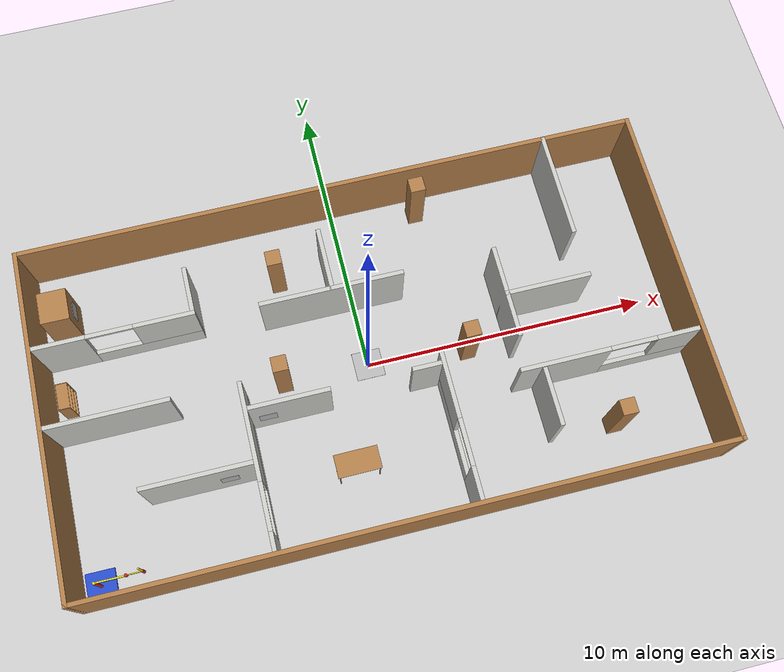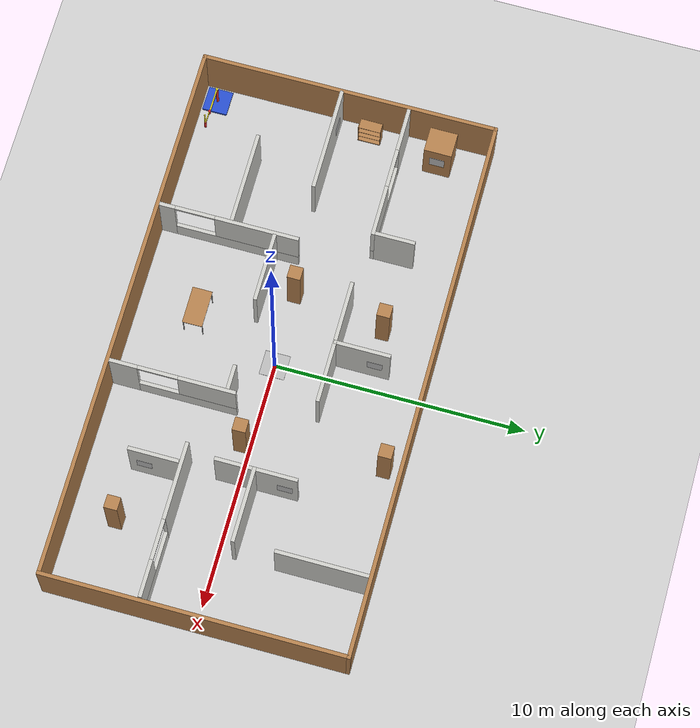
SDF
<sdf version="1.6">
 <world name="default">
  <light name="sun" type="directional">
   <pose>0 0 10 0 -0 0</pose>
   <diffuse>0.8 0.8 0.8 1</diffuse>
   <specular>0.2 0.2 0.2 1</specular>
   <attenuation>
    <range>1000</range>
    <constant>0.9</constant>
    <linear>0.01</linear>
    <quadratic>0.001</quadratic>
   </attenuation>
   <direction>-0.5 0.1 -0.9</direction>
  </light>
  <model name="ground_plane">
   <static>1</static>
   <link name="link">
    <collision name="collision">
     <geometry><plane><normal>0 0 1</normal><size>25 25</size></plane></geometry>
     <surface><friction><ode><mu>100</mu><mu2>50</mu2></ode></friction></surface>
    </collision>
    <visual name="visual">
     <cast_shadows>0</cast_shadows>
     <geometry><plane><normal>0 0 1</normal><size>25 25</size></plane></geometry>
     <material>
      <script><uri>file://media/materials/scripts/gazebo.material</uri><name>Gazebo/Grey</name></script>
     </material>
    </visual>
   </link>
  </model>
  <gravity>0 0 -9.8</gravity>
  <magnetic_field>6e-06 2.3e-05 -4.2e-05</magnetic_field>
  <atmosphere type="adiabatic"/>
  <plugin name="ros_interface_plugin" filename="librotors_gazebo_ros_interface_plugin.so"/>
  <physics name="default_physics" default="0" type="ode">
   <max_step_size>0.001</max_step_size>
   <real_time_factor>1</real_time_factor>
   <real_time_update_rate>1000</real_time_update_rate>
  </physics>
  <scene>
   <sky><clouds><speed>30</speed></clouds><sunrise>5</sunrise><time>10</time><sunset>15</sunset></sky>
   <ambient>0.5 0.5 0.5 1</ambient>
   <background>0.7 0.7 0.7 1</background>
   <shadows>1</shadows>
  </scene>
  <spherical_coordinates>
   <surface_model>EARTH_WGS84</surface_model>
   <latitude_deg>0</latitude_deg>
   <longitude_deg>0</longitude_deg>
   <elevation>0</elevation>
   <heading_deg>0</heading_deg>
  </spherical_coordinates>
  <model name="20230316">
   <link name="Wall_14">
    <collision name="Wall_14_Collision">
     <geometry><box><size>12 0.15 2.5</size></box></geometry>
     <pose>0 0 1.25 0 -0 0</pose>
    </collision>
    <visual name="Wall_14_Visual">
     <pose>0 0 1.25 0 -0 0</pose>
     <geometry><box><size>12 0.15 2.5</size></box></geometry>
     <material>
      <script><uri>file://media/materials/scripts/gazebo.material</uri><name>Gazebo/Wood</name></script>
      <ambient>1 1 1 1</ambient>
     </material>
     <meta><layer>0</layer></meta>
    </visual>
    <pose>-10.925 0 0 0 -0 -1.5708</pose>
   </link>
   <link name="startflag">
    <pose>0 0 0.115 0 -0 0</pose>
    <inertial>
     <mass>0.39</mass>
     <inertia><ixx>0.00058</ixx><ixy>0</ixy><ixz>0</ixz><iyy>0.00058</iyy><iyz>0</iyz><izz>0.00019</izz></inertia>
    </inertial>
    <collision name="collision"><geometry><box><size>1 1 0.01</size></box></geometry></collision>
    <visual name="visual">
     <geometry><box><size>1 1 0.01</size></box></geometry>
     <material>
      <script>
       <uri>model://apriltag/materials/scripts</uri>
       <uri>model://apriltag/materials/textures</uri>
       <name>startflag/Diffuse</name>
      </script>
     </material>
    </visual>
   </link>
   <link name="Wall_15">
    <collision name="Wall_15_Collision">
     <geometry><box><size>22 0.15 2.5</size></box></geometry>
     <pose>0 0 1.25 0 -0 0</pose>
    </collision>
    <visual name="Wall_15_Visual">
     <pose>0 0 1.25 0 -0 0</pose>
     <geometry><box><size>22 0.15 2.5</size></box></geometry>
     <material>
      <script><uri>file://media/materials/scripts/gazebo.material</uri><name>Gazebo/Wood</name></script>
      <ambient>1 1 1 1</ambient>
     </material>
     <meta><layer>0</layer></meta>
    </visual>
    <pose>0 -5.925 0 0 -0 0</pose>
   </link>
   <link name="Wall_16">
    <collision name="Wall_16_Collision">
     <geometry><box><size>12 0.15 2.5</size></box></geometry>
     <pose>0 0 1.25 0 -0 0</pose>
    </collision>
    <visual name="Wall_16_Visual">
     <pose>0 0 1.25 0 -0 0</pose>
     <geometry><box><size>12 0.15 2.5</size></box></geometry>
     <material>
      <script><uri>file://media/materials/scripts/gazebo.material</uri><name>Gazebo/Wood</name></script>
      <ambient>1 1 1 1</ambient>
     </material>
     <meta><layer>0</layer></meta>
    </visual>
    <pose>10.925 0 0 0 -0 1.5708</pose>
   </link>
   <link name="Wall_17">
    <collision name="Wall_17_Collision">
     <geometry><box><size>22 0.15 2.5</size></box></geometry>
     <pose>0 0 1.25 0 -0 0</pose>
    </collision>
    <visual name="Wall_17_Visual">
     <pose>0 0 1.25 0 -0 0</pose>
     <geometry><box><size>22 0.15 2.5</size></box></geometry>
     <material>
      <script><uri>file://media/materials/scripts/gazebo.material</uri><name>Gazebo/Wood</name></script>
      <ambient>1 1 1 1</ambient>
     </material>
     <meta><layer>0</layer></meta>
    </visual>
    <pose>0 5.925 0 0 -0 3.14159</pose>
   </link>
   <link name="Wall_22">
    <collision name="Wall_22_Collision">
     <geometry><box><size>3.75 0.15 2.5</size></box></geometry>
     <pose>0 0 1.25 0 -0 0</pose>
    </collision>
    <visual name="Wall_22_Visual">
     <pose>0 0 1.25 0 -0 0</pose>
     <geometry><box><size>3.75 0.15 2.5</size></box></geometry>
     <material>
      <script><uri>file://media/materials/scripts/gazebo.material</uri><name>Gazebo/CeilingTiled</name></script>
      <ambient>0.921569 0.807843 0.615686 1</ambient>
     </material>
     <meta><layer>0</layer></meta>
    </visual>
    <pose>7.80154 4.0984 0 0 -0 -1.5708</pose>
   </link>
   <link name="Wall_25">
    <collision name="Wall_25_Collision">
     <geometry><box><size>3.25 0.15 2.5</size></box></geometry>
     <pose>0 0 1.25 0 -0 0</pose>
    </collision>
    <visual name="Wall_25_Visual">
     <pose>0 0 1.25 0 -0 0</pose>
     <geometry><box><size>3.25 0.15 2.5</size></box></geometry>
     <material>
      <script><uri>file://media/materials/scripts/gazebo.material</uri><name>Gazebo/CeilingTiled</name></script>
      <ambient>0.921569 0.807843 0.615686 1</ambient>
     </material>
     <meta><layer>0</layer></meta>
    </visual>
    <pose>4.95532 0.704173 0 0 -0 -1.5708</pose>
   </link>
   <link name="Wall_28">
    <collision name="Wall_28_Collision">
     <geometry><box><size>3 0.15 2.5</size></box></geometry>
     <pose>0 0 1.25 0 -0 0</pose>
    </collision>
    <visual name="Wall_28_Visual">
     <pose>0 0 1.25 0 -0 0</pose>
     <geometry><box><size>3 0.15 2.5</size></box></geometry>
     <material>
      <script><uri>file://media/materials/scripts/gazebo.material</uri><name>Gazebo/CeilingTiled</name></script>
      <ambient>0.921569 0.807843 0.615686 1</ambient>
     </material>
     <meta><layer>0</layer></meta>
    </visual>
    <pose>6.38032 0.631561 0 0 -0 0</pose>
   </link>
   <link name="Wall_30">
    <collision name="Wall_30_Collision">
     <geometry><box><size>2.25 0.15 2.5</size></box></geometry>
     <pose>0 0 1.25 0 -0 0</pose>
    </collision>
    <visual name="Wall_30_Visual">
     <pose>0 0 1.25 0 -0 0</pose>
     <geometry><box><size>2.25 0.15 2.5</size></box></geometry>
     <material>
      <script><uri>file://media/materials/scripts/gazebo.material</uri><name>Gazebo/CeilingTiled</name></script>
      <ambient>0.921569 0.807843 0.615686 1</ambient>
     </material>
     <meta><layer>0</layer></meta>
    </visual>
    <pose>-0.710524 3.27899 0 0 -0 -1.5708</pose>
   </link>
   <link name="Wall_32">
    <collision name="Wall_32_Collision">
     <geometry><box><size>5 0.15 2.5</size></box></geometry>
     <pose>0 0 1.25 0 -0 0</pose>
    </collision>
    <visual name="Wall_32_Visual">
     <pose>0 0 1.25 0 -0 0</pose>
     <geometry><box><size>5 0.15 2.5</size></box></geometry>
     <material>
      <script><uri>file://media/materials/scripts/gazebo.material</uri><name>Gazebo/CeilingTiled</name></script>
      <ambient>0.921569 0.807843 0.615686 1</ambient>
     </material>
     <meta><layer>0</layer></meta>
    </visual>
    <pose>-0.732742 2.20097 0 0 -0 0</pose>
   </link>
   <link name="Wall_41">
    <collision name="Wall_41_Collision">
     <geometry><box><size>4.25 0.15 2.5</size></box></geometry>
     <pose>0 0 1.25 0 -0 0</pose>
    </collision>
    <visual name="Wall_41_Visual">
     <pose>0 0 1.25 0 -0 0</pose>
     <geometry><box><size>4.25 0.15 2.5</size></box></geometry>
     <material>
      <script><uri>file://media/materials/scripts/gazebo.material</uri><name>Gazebo/CeilingTiled</name></script>
      <ambient>0.921569 0.807843 0.615686 1</ambient>
     </material>
     <meta><layer>0</layer></meta>
    </visual>
    <pose>-8.7952 -0.299446 0 0 -0 0</pose>
   </link>
   <link name="Wall_43">
    <collision name="Wall_43_Collision">
     <geometry><box><size>3.75 0.15 2.5</size></box></geometry>
     <pose>0 0 1.25 0 -0 0</pose>
    </collision>
    <visual name="Wall_43_Visual">
     <pose>0 0 1.25 0 -0 0</pose>
     <geometry><box><size>3.75 0.15 2.5</size></box></geometry>
     <material>
      <script><uri>file://media/materials/scripts/gazebo.material</uri><name>Gazebo/CeilingTiled</name></script>
      <ambient>0.921569 0.807843 0.615686 1</ambient>
     </material>
     <meta><layer>0</layer></meta>
    </visual>
    <pose>-6.33198 -2.95947 0 0 -0 0</pose>
   </link>
   <static>1</static>
  </model>
  <model name="window1">
   <pose>7.71672 -2.0654 0 0 -0 0</pose>
   <link name="Wall_0">
    <visual name="Wall_0_Visual_0">
     <pose>-1.54209 0 1.25 0 -0 0</pose>
     <geometry><box><size>3.11583 0.15 2.5</size></box></geometry>
     <material>
      <script><uri>file://media/materials/scripts/gazebo.material</uri><name>Gazebo/CeilingTiled</name></script>
      <ambient>1 0.764706 0.305882 1</ambient>
     </material>
     <meta><layer>0</layer></meta>
    </visual>
    <collision name="Wall_0_Collision_0">
     <geometry><box><size>3.11583 0.15 2.5</size></box></geometry>
     <pose>-1.54209 0 1.25 0 -0 0</pose>
    </collision>
    <visual name="Wall_0_Visual_1">
     <pose>1.55791 0 0.4 0 -0 0</pose>
     <geometry><box><size>3.08418 0.15 0.8</size></box></geometry>
     <material>
      <script><uri>file://media/materials/scripts/gazebo.material</uri><name>Gazebo/CeilingTiled</name></script>
      <ambient>1 0.764706 0.305882 1</ambient>
     </material>
     <meta><layer>0</layer></meta>
    </visual>
    <collision name="Wall_0_Collision_1">
     <geometry><box><size>3.08418 0.15 0.8</size></box></geometry>
     <pose>1.55791 0 0.4 0 -0 0</pose>
    </collision>
    <visual name="Wall_0_Visual_2">
     <pose>2.35791 0 1.65 0 -0 0</pose>
     <geometry><box><size>1.48418 0.15 1.7</size></box></geometry>
     <material>
      <script><uri>file://media/materials/scripts/gazebo.material</uri><name>Gazebo/CeilingTiled</name></script>
      <ambient>1 0.764706 0.305882 1</ambient>
     </material>
     <meta><layer>0</layer></meta>
    </visual>
    <collision name="Wall_0_Collision_2">
     <geometry><box><size>1.48418 0.15 1.7</size></box></geometry>
     <pose>2.35791 0 1.65 0 -0 0</pose>
    </collision>
    <visual name="Wall_0_Visual_3">
     <pose>0.815825 0 2.45 0 -0 0</pose>
     <geometry><box><size>1.6 0.15 0.1</size></box></geometry>
     <material>
      <script><uri>file://media/materials/scripts/gazebo.material</uri><name>Gazebo/CeilingTiled</name></script>
      <ambient>1 0.764706 0.305882 1</ambient>
     </material>
     <meta><layer>0</layer></meta>
    </visual>
    <collision name="Wall_0_Collision_3">
     <geometry><box><size>1.6 0.15 0.1</size></box></geometry>
     <pose>0.815825 0 2.45 0 -0 0</pose>
    </collision>
   </link>
   <static>1</static>
  </model>
  <model name="window2">
   <pose>2.26488 -3.35 0 0 -0 0</pose>
   <link name="Wall_2">
    <pose>0 -0 0 0 -0 1.5708</pose>
    <visual name="Wall_2_Visual_0">
     <pose>-1.94455 0 1.25 0 -0 0</pose>
     <geometry><box><size>1.1109 0.15 2.5</size></box></geometry>
     <material>
      <script><uri>file://media/materials/scripts/gazebo.material</uri><name>Gazebo/CeilingTiled</name></script>
      <ambient>1 0.764706 0.305882 1</ambient>
     </material>
     <meta><layer>0</layer></meta>
    </visual>
    <collision name="Wall_2_Collision_0">
     <geometry><box><size>1.1109 0.15 2.5</size></box></geometry>
     <pose>-1.94455 0 1.25 0 -0 0</pose>
    </collision>
    <visual name="Wall_2_Visual_1">
     <pose>0.555448 0 0.4 0 -0 0</pose>
     <geometry><box><size>3.8891 0.15 0.8</size></box></geometry>
     <material>
      <script><uri>file://media/materials/scripts/gazebo.material</uri><name>Gazebo/CeilingTiled</name></script>
      <ambient>1 0.764706 0.305882 1</ambient>
     </material>
     <meta><layer>0</layer></meta>
    </visual>
    <collision name="Wall_2_Collision_1">
     <geometry><box><size>3.8891 0.15 0.8</size></box></geometry>
     <pose>0.555448 0 0.4 0 -0 0</pose>
    </collision>
    <visual name="Wall_2_Visual_2">
     <pose>1.35545 0 1.65 0 -0 0</pose>
     <geometry><box><size>2.2891 0.15 1.7</size></box></geometry>
     <material>
      <script><uri>file://media/materials/scripts/gazebo.material</uri><name>Gazebo/CeilingTiled</name></script>
      <ambient>1 0.764706 0.305882 1</ambient>
     </material>
     <meta><layer>0</layer></meta>
    </visual>
    <collision name="Wall_2_Collision_2">
     <geometry><box><size>2.2891 0.15 1.7</size></box></geometry>
     <pose>1.35545 0 1.65 0 -0 0</pose>
    </collision>
    <visual name="Wall_2_Visual_3">
     <pose>-0.589104 0 2.45 0 -0 0</pose>
     <geometry><box><size>1.6 0.15 0.1</size></box></geometry>
     <material>
      <script><uri>file://media/materials/scripts/gazebo.material</uri><name>Gazebo/CeilingTiled</name></script>
      <ambient>1 0.764706 0.305882 1</ambient>
     </material>
     <meta><layer>0</layer></meta>
    </visual>
    <collision name="Wall_2_Collision_3">
     <geometry><box><size>1.6 0.15 0.1</size></box></geometry>
     <pose>-0.589104 0 2.45 0 -0 0</pose>
    </collision>
   </link>
   <static>1</static>
  </model>
  <model name="window3">
   <pose>-4.4 -3.05 0 0 -0 0</pose>
   <link name="Wall_0">
    <pose>0 0 0 0 -0 1.5708</pose>
    <visual name="Wall_0_Visual_0">
     <pose>-2.48617 0 1.25 0 -0 0</pose>
     <geometry><box><size>0.62765 0.15 2.5</size></box></geometry>
     <material>
      <script><uri>file://media/materials/scripts/gazebo.material</uri><name>Gazebo/CeilingTiled</name></script>
      <ambient>1 0.764706 0.305882 1</ambient>
     </material>
     <meta><layer>0</layer></meta>
    </visual>
    <collision name="Wall_0_Collision_0">
     <geometry><box><size>0.62765 0.15 2.5</size></box></geometry>
     <pose>-2.48617 0 1.25 0 -0 0</pose>
    </collision>
    <visual name="Wall_0_Visual_1">
     <pose>0.313825 0 0.4 0 -0 0</pose>
     <geometry><box><size>4.97235 0.15 0.8</size></box></geometry>
     <material>
      <script><uri>file://media/materials/scripts/gazebo.material</uri><name>Gazebo/CeilingTiled</name></script>
      <ambient>1 0.764706 0.305882 1</ambient>
     </material>
     <meta><layer>0</layer></meta>
    </visual>
    <collision name="Wall_0_Collision_1">
     <geometry><box><size>4.97235 0.15 0.8</size></box></geometry>
     <pose>0.313825 0 0.4 0 -0 0</pose>
    </collision>
    <visual name="Wall_0_Visual_2">
     <pose>1.11383 0 1.65 0 -0 0</pose>
     <geometry><box><size>3.37235 0.15 1.7</size></box></geometry>
     <material>
      <script><uri>file://media/materials/scripts/gazebo.material</uri><name>Gazebo/CeilingTiled</name></script>
      <ambient>1 0.764706 0.305882 1</ambient>
     </material>
     <meta><layer>0</layer></meta>
    </visual>
    <collision name="Wall_0_Collision_2">
     <geometry><box><size>3.37235 0.15 1.7</size></box></geometry>
     <pose>1.11383 0 1.65 0 -0 0</pose>
    </collision>
    <visual name="Wall_0_Visual_3">
     <pose>-1.37235 0 2.45 0 -0 0</pose>
     <geometry><box><size>1.6 0.15 0.1</size></box></geometry>
     <material>
      <script><uri>file://media/materials/scripts/gazebo.material</uri><name>Gazebo/CeilingTiled</name></script>
      <ambient>1 0.764706 0.305882 1</ambient>
     </material>
     <meta><layer>0</layer></meta>
    </visual>
    <collision name="Wall_0_Collision_3">
     <geometry><box><size>1.6 0.15 0.1</size></box></geometry>
     <pose>-1.37235 0 2.45 0 -0 0</pose>
    </collision>
   </link>
   <static>1</static>
  </model>
  <model name="window4">
   <pose>-8.1 2.44144 0 0 -0 0</pose>
   <link name="Wall_5">
    <visual name="Wall_5_Visual_0">
     <pose>-1.8495 0 1.25 0 -0 0</pose>
     <geometry><box><size>1.801 0.15 2.5</size></box></geometry>
     <material>
      <script><uri>file://media/materials/scripts/gazebo.material</uri><name>Gazebo/CeilingTiled</name></script>
      <ambient>1 0.764706 0.305882 1</ambient>
     </material>
     <meta><layer>0</layer></meta>
    </visual>
    <collision name="Wall_5_Collision_0">
     <geometry><box><size>1.801 0.15 2.5</size></box></geometry>
     <pose>-1.8495 0 1.25 0 -0 0</pose>
    </collision>
    <visual name="Wall_5_Visual_1">
     <pose>0.9005 0 0.4 0 -0 0</pose>
     <geometry><box><size>3.699 0.15 0.8</size></box></geometry>
     <material>
      <script><uri>file://media/materials/scripts/gazebo.material</uri><name>Gazebo/CeilingTiled</name></script>
      <ambient>1 0.764706 0.305882 1</ambient>
     </material>
     <meta><layer>0</layer></meta>
    </visual>
    <collision name="Wall_5_Collision_1">
     <geometry><box><size>3.699 0.15 0.8</size></box></geometry>
     <pose>0.9005 0 0.4 0 -0 0</pose>
    </collision>
    <visual name="Wall_5_Visual_2">
     <pose>1.7005 0 1.65 0 -0 0</pose>
     <geometry><box><size>2.099 0.15 1.7</size></box></geometry>
     <material>
      <script><uri>file://media/materials/scripts/gazebo.material</uri><name>Gazebo/CeilingTiled</name></script>
      <ambient>1 0.764706 0.305882 1</ambient>
     </material>
     <meta><layer>0</layer></meta>
    </visual>
    <collision name="Wall_5_Collision_2">
     <geometry><box><size>2.099 0.15 1.7</size></box></geometry>
     <pose>1.7005 0 1.65 0 -0 0</pose>
    </collision>
    <visual name="Wall_5_Visual_3">
     <pose>-0.149 0 2.45 0 -0 0</pose>
     <geometry><box><size>1.6 0.15 0.1</size></box></geometry>
     <material>
      <script><uri>file://media/materials/scripts/gazebo.material</uri><name>Gazebo/CeilingTiled</name></script>
      <ambient>1 0.764706 0.305882 1</ambient>
     </material>
     <meta><layer>0</layer></meta>
    </visual>
    <collision name="Wall_5_Collision_3">
     <geometry><box><size>1.6 0.15 0.1</size></box></geometry>
     <pose>-0.149 0 2.45 0 -0 0</pose>
    </collision>
   </link>
   <static>1</static>
  </model>
  <model name="add_wall1">
   <pose>5.42333 -3.1581 0 0 -0 0</pose>
   <link name="Wall_1">
    <collision name="Wall_1_Collision">
     <geometry><box><size>2 0.15 2.5</size></box></geometry>
     <pose>0 0 1.25 0 -0 0</pose>
    </collision>
    <visual name="Wall_1_Visual">
     <pose>0 0 1.25 0 -0 0</pose>
     <geometry><box><size>2 0.15 2.5</size></box></geometry>
     <material>
      <script><uri>file://media/materials/scripts/gazebo.material</uri><name>Gazebo/CeilingTiled</name></script>
      <ambient>1 0.764706 0.305882 1</ambient>
     </material>
     <meta><layer>0</layer></meta>
    </visual>
    <pose>0 0 0 0 -0 -1.5708</pose>
   </link>
   <static>1</static>
  </model>
  <model name="add_wall2">
   <pose>-5.43 3.31172 0 0 -0 0</pose>
   <link name="Wall_5">
    <collision name="Wall_5_Collision">
     <geometry><box><size>1.6 0.15 2.5</size></box></geometry>
     <pose>0 0 1.25 0 -0 0</pose>
    </collision>
    <visual name="Wall_5_Visual">
     <pose>0 0 1.25 0 -0 0</pose>
     <geometry><box><size>1.6 0.15 2.5</size></box></geometry>
     <material>
      <script><uri>file://media/materials/scripts/gazebo.material</uri><name>Gazebo/CeilingTiled</name></script>
      <ambient>1 0.764706 0.305882 1</ambient>
     </material>
     <meta><layer>0</layer></meta>
    </visual>
    <pose>0 0 0 0 -0 1.5708</pose>
   </link>
   <static>1</static>
  </model>
  <model name="add_wall3">
   <pose>-2.95 -1.2 0 0 -0 0</pose>
   <link name="Wall_9">
    <collision name="Wall_9_Collision">
     <geometry><box><size>2.8 0.15 2.5</size></box></geometry>
     <pose>0 0 1.25 0 -0 0</pose>
    </collision>
    <visual name="Wall_9_Visual">
     <pose>0 0 1.25 0 -0 0</pose>
     <geometry><box><size>2.8 0.15 2.5</size></box></geometry>
     <material>
      <script><uri>file://media/materials/scripts/gazebo.material</uri><name>Gazebo/CeilingTiled</name></script>
      <ambient>1 0.764706 0.305882 1</ambient>
     </material>
     <meta><layer>0</layer></meta>
    </visual>
   </link>
   <static>1</static>
  </model>
  <model name="add_wall4">
   <pose>1.69 -1.2 0 0 -0 0</pose>
   <link name="Wall_15">
    <collision name="Wall_15_Collision">
     <geometry><box><size>1 0.15 2.5</size></box></geometry>
     <pose>0 0 1.25 0 -0 0</pose>
    </collision>
    <visual name="Wall_15_Visual">
     <pose>0 0 1.25 0 -0 0</pose>
     <geometry><box><size>1 0.15 2.5</size></box></geometry>
     <material>
      <script><uri>file://media/materials/scripts/gazebo.material</uri><name>Gazebo/CeilingTiled</name></script>
      <ambient>1 0.764706 0.305882 1</ambient>
     </material>
     <meta><layer>0</layer></meta>
    </visual>
    <pose>0 0 0 0 -0 3.14159</pose>
   </link>
   <static>1</static>
  </model>
  <model name="unit_box">
   <pose>-10.03 3.96841 1.01795 -4e-06 -2e-06 -0.005315</pose>
   <link name="link">
    <inertial>
     <mass>1</mass>
     <inertia>
      <ixx>0.166667</ixx>
      <ixy>0</ixy>
      <ixz>0</ixz>
      <iyy>0.166667</iyy>
      <iyz>0</iyz>
      <izz>0.166667</izz>
     </inertia>
    </inertial>
    <collision name="collision"><geometry><box><size>1 1.11313 2.03591</size></box></geometry></collision>
    <visual name="visual">
     <geometry><box><size>1 1.11313 2.03591</size></box></geometry>
     <material>
      <script><uri>file://media/materials/scripts/gazebo.material</uri><name>Gazebo/Wood</name></script>
     </material>
    </visual>
   </link>
   <static>0</static>
  </model>
  <model name="table">
   <static>0</static>
   <link name="link">
    <collision name="surface">
     <pose>0 0 1 0 -0 0</pose>
     <geometry><box><size>1.5 0.8 0.03</size></box></geometry>
     <surface><friction><ode><mu>0.6</mu><mu2>0.6</mu2></ode></friction></surface>
    </collision>
    <visual name="visual1">
     <pose>0 0 1 0 -0 0</pose>
     <geometry><box><size>1.5 0.8 0.03</size></box></geometry>
     <material>
      <script><uri>file://media/materials/scripts/gazebo.material</uri><name>Gazebo/Wood</name></script>
     </material>
    </visual>
    <collision name="front_left_leg">
     <pose>0.68 0.38 0.5 0 -0 0</pose>
     <geometry><cylinder><radius>0.02</radius><length>1</length></cylinder></geometry>
    </collision>
    <visual name="front_left_leg">
     <pose>0.68 0.38 0.5 0 -0 0</pose>
     <geometry><cylinder><radius>0.02</radius><length>1</length></cylinder></geometry>
     <material>
      <script><uri>file://media/materials/scripts/gazebo.material</uri><name>Gazebo/Grey</name></script>
     </material>
    </visual>
    <collision name="front_right_leg">
     <pose>0.68 -0.38 0.5 0 -0 0</pose>
     <geometry><cylinder><radius>0.02</radius><length>1</length></cylinder></geometry>
    </collision>
    <visual name="front_right_leg">
     <pose>0.68 -0.38 0.5 0 -0 0</pose>
     <geometry><cylinder><radius>0.02</radius><length>1</length></cylinder></geometry>
     <material>
      <script><uri>file://media/materials/scripts/gazebo.material</uri><name>Gazebo/Grey</name></script>
     </material>
    </visual>
    <collision name="back_right_leg">
     <pose>-0.68 -0.38 0.5 0 -0 0</pose>
     <geometry><cylinder><radius>0.02</radius><length>1</length></cylinder></geometry>
    </collision>
    <visual name="back_right_leg">
     <pose>-0.68 -0.38 0.5 0 -0 0</pose>
     <geometry><cylinder><radius>0.02</radius><length>1</length></cylinder></geometry>
     <material>
      <script><uri>file://media/materials/scripts/gazebo.material</uri><name>Gazebo/Grey</name></script>
     </material>
    </visual>
    <collision name="back_left_leg">
     <pose>-0.68 0.38 0.5 0 -0 0</pose>
     <geometry><cylinder><radius>0.02</radius><length>1</length></cylinder></geometry>
    </collision>
    <visual name="back_left_leg">
     <pose>-0.68 0.38 0.5 0 -0 0</pose>
     <geometry><cylinder><radius>0.02</radius><length>1</length></cylinder></geometry>
     <material>
      <script><uri>file://media/materials/scripts/gazebo.material</uri><name>Gazebo/Grey</name></script>
     </material>
    </visual>
    <inertial>
     <inertia><ixx>1</ixx><ixy>0</ixy><ixz>0</ixz><iyy>1</iyy><iyz>0</iyz><izz>1</izz></inertia>
     <mass>1</mass>
    </inertial>
   </link>
   <pose>-1.20164 -3.44571 0 0 -0 0.005682</pose>
  </model>
  <model name="unit_box_0">
   <pose>-3 0 1.29125 -2e-06 -0 -0.000704</pose>
   <link name="link">
    <inertial>
     <mass>1</mass>
     <inertia>
      <ixx>0.166667</ixx>
      <ixy>0</ixy>
      <ixz>0</ixz>
      <iyy>0.166667</iyy>
      <iyz>0</iyz>
      <izz>0.166667</izz>
     </inertia>
    </inertial>
    <collision name="collision"><geometry><box><size>0.52404 0.528613 2.5825</size></box></geometry></collision>
    <visual name="visual">
     <geometry><box><size>0.52404 0.528613 2.5825</size></box></geometry>
     <material>
      <script><uri>file://media/materials/scripts/gazebo.material</uri><name>Gazebo/Wood</name></script>
     </material>
    </visual>
   </link>
   <static>0</static>
  </model>
  <model name="unit_box_0_clone">
   <pose>3.46103 -0.330294 1.29125 1e-06 1e-06 0.014324</pose>
   <link name="link">
    <inertial>
     <mass>1</mass>
     <inertia>
      <ixx>0.166667</ixx>
      <ixy>0</ixy>
      <ixz>0</ixz>
      <iyy>0.166667</iyy>
      <iyz>0</iyz>
      <izz>0.166667</izz>
     </inertia>
    </inertial>
    <collision name="collision"><geometry><box><size>0.52404 0.528614 2.5825</size></box></geometry></collision>
    <visual name="visual">
     <geometry><box><size>0.52404 0.528614 2.5825</size></box></geometry>
     <material>
      <script><uri>file://media/materials/scripts/gazebo.material</uri><name>Gazebo/Wood</name></script>
     </material>
    </visual>
   </link>
   <static>0</static>
  </model>
  <model name="unit_box_0_clone_0">
   <pose>3 5.20912 1.29125 0 -0 0.000972</pose>
   <link name="link">
    <inertial>
     <mass>1</mass>
     <inertia>
      <ixx>0.166667</ixx>
      <ixy>0</ixy>
      <ixz>0</ixz>
      <iyy>0.166667</iyy>
      <iyz>0</iyz>
      <izz>0.166667</izz>
     </inertia>
    </inertial>
    <collision name="collision"><geometry><box><size>0.52404 0.528614 2.5825</size></box></geometry></collision>
    <visual name="visual">
     <geometry><box><size>0.52404 0.528614 2.5825</size></box></geometry>
     <material>
      <script><uri>file://media/materials/scripts/gazebo.material</uri><name>Gazebo/Wood</name></script>
     </material>
    </visual>
   </link>
   <static>0</static>
  </model>
  <model name="unit_box_0_clone_2">
   <pose>-2.41588 3.7082 1.29125 -1e-06 1e-06 0.000266</pose>
   <link name="link">
    <inertial>
     <mass>1</mass>
     <inertia>
      <ixx>0.166667</ixx>
      <ixy>0</ixy>
      <ixz>0</ixz>
      <iyy>0.166667</iyy>
      <iyz>0</iyz>
      <izz>0.166667</izz>
     </inertia>
    </inertial>
    <collision name="collision"><geometry><box><size>0.52404 0.528614 2.5825</size></box></geometry></collision>
    <visual name="visual">
     <geometry><box><size>0.52404 0.528614 2.5825</size></box></geometry>
     <material>
      <script><uri>file://media/materials/scripts/gazebo.material</uri><name>Gazebo/Wood</name></script>
     </material>
    </visual>
   </link>
   <static>0</static>
  </model>
  <model name="unit_box_0_clone_3">
   <pose>7.64647 -4.07673 1.29125 -1e-06 -1e-06 0.000344</pose>
   <link name="link">
    <inertial>
     <mass>1</mass>
     <inertia>
      <ixx>0.166667</ixx>
      <ixy>0</ixy>
      <ixz>0</ixz>
      <iyy>0.166667</iyy>
      <iyz>0</iyz>
      <izz>0.166667</izz>
     </inertia>
    </inertial>
    <collision name="collision"><geometry><box><size>0.52404 0.528614 2.5825</size></box></geometry></collision>
    <visual name="visual">
     <geometry><box><size>0.52404 0.528614 2.5825</size></box></geometry>
     <material>
      <script><uri>file://media/materials/scripts/gazebo.material</uri><name>Gazebo/Wood</name></script>
     </material>
    </visual>
   </link>
   <static>0</static>
  </model>
  <model name="static_apriltag_0">
   <link name="link">
    <pose>0 0 0 0 1.57 0</pose>
    <inertial>
     <mass>0.39</mass>
     <inertia><ixx>0.00058</ixx><ixy>0</ixy><ixz>0</ixz><iyy>0.00058</iyy><iyz>0</iyz><izz>0.00019</izz></inertia>
    </inertial>
    <collision name="collision"><geometry><box><size>0.6 0.6 0.01</size></box></geometry></collision>
    <visual name="visual">
     <geometry><box><size>0.6 0.6 0.01</size></box></geometry>
     <material>
      <script>
       <uri>model://apriltag/materials/scripts</uri>
       <uri>model://apriltag/materials/textures</uri>
       <name>apriltag/Diffuse0</name>
      </script>
     </material>
    </visual>
    <gravity>0</gravity>
   </link>
   <pose>5.05 1.82972 1.2 0 -0 0</pose>
   <static>0</static>
   <pose>1.90787 0.108649 0 0 -0 0</pose>
  </model>
  <model name="static_apriltag_1">
   <link name="link">
    <pose>0 0 0 0 1.57 0</pose>
    <inertial>
     <mass>0.39</mass>
     <inertia><ixx>0.00058</ixx><ixy>0</ixy><ixz>0</ixz><iyy>0.00058</iyy><iyz>0</iyz><izz>0.00019</izz></inertia>
    </inertial>
    <collision name="collision"><geometry><box><size>0.6 0.6 0.01</size></box></geometry></collision>
    <visual name="visual">
     <geometry><box><size>0.6 0.6 0.01</size></box></geometry>
     <material>
      <script>
       <uri>model://apriltag/materials/scripts</uri>
       <uri>model://apriltag/materials/textures</uri>
       <name>apriltag/Diffuse1</name>
      </script>
     </material>
    </visual>
    <gravity>0</gravity>
   </link>
   <pose>-0.62 3.81606 1.2 0 -0 0</pose>
   <static>0</static>
   <pose>1.36256 0.459264 0 0 -0 0</pose>
  </model>
  <model name="static_apriltag_2">
   <link name="link">
    <pose>0 0 0 0 1.57 0</pose>
    <inertial>
     <mass>0.39</mass>
     <inertia><ixx>0.00058</ixx><ixy>0</ixy><ixz>0</ixz><iyy>0.00058</iyy><iyz>0</iyz><izz>0.00019</izz></inertia>
    </inertial>
    <collision name="collision"><geometry><box><size>0.6 0.6 0.01</size></box></geometry></collision>
    <visual name="visual">
     <geometry><box><size>0.6 0.6 0.01</size></box></geometry>
     <material>
      <script>
       <uri>model://apriltag/materials/scripts</uri>
       <uri>model://apriltag/materials/textures</uri>
       <name>apriltag/Diffuse2</name>
      </script>
     </material>
    </visual>
    <gravity>0</gravity>
   </link>
   <pose>-4.5 -1.3042 1.2 0 -0 0</pose>
   <static>0</static>
   <pose>0.80811 0.829943 0 0 -0 0</pose>
  </model>
  <model name="static_apriltag_3">
   <link name="link">
    <pose>0 0 0 -1.57 1.57 -0</pose>
    <inertial>
     <mass>0.39</mass>
     <inertia><ixx>0.00058</ixx><ixy>0</ixy><ixz>0</ixz><iyy>0.00058</iyy><iyz>0</iyz><izz>0.00019</izz></inertia>
    </inertial>
    <collision name="collision"><geometry><box><size>0.6 0.6 0.01</size></box></geometry></collision>
    <visual name="visual">
     <geometry><box><size>0.6 0.6 0.01</size></box></geometry>
     <material>
      <script>
       <uri>model://apriltag/materials/scripts</uri>
       <uri>model://apriltag/materials/textures</uri>
       <name>apriltag/Diffuse3</name>
      </script>
     </material>
    </visual>
    <gravity>0</gravity>
   </link>
   <pose>-3.7453 -1.3 1.2 0 -0 0</pose>
   <static>0</static>
   <pose>3.65849 3.02317 0 0 -0 0</pose>
  </model>
  <model name="static_apriltag_4">
   <link name="link">
    <pose>0 0 0 0 1.57 0</pose>
    <inertial>
     <mass>0.39</mass>
     <inertia><ixx>0.00058</ixx><ixy>0</ixy><ixz>0</ixz><iyy>0.00058</iyy><iyz>0</iyz><izz>0.00019</izz></inertia>
    </inertial>
    <collision name="collision"><geometry><box><size>0.6 0.6 0.01</size></box></geometry></collision>
    <visual name="visual">
     <geometry><box><size>0.6 0.6 0.01</size></box></geometry>
     <material>
      <script>
       <uri>model://apriltag/materials/scripts</uri>
       <uri>model://apriltag/materials/textures</uri>
       <name>apriltag/Diffuse4</name>
      </script>
     </material>
    </visual>
    <gravity>0</gravity>
   </link>
   <pose>5.52 -3.55231 1.2 0 -0 0</pose>
   <static>0</static>
   <pose>3.93537 3.29316 0 0 -0 0</pose>
  </model>
  <model name="static_apriltag_5">
   <link name="link">
    <pose>0 0 0 -1.57 1.57 -0</pose>
    <inertial>
     <mass>0.39</mass>
     <inertia><ixx>0.00058</ixx><ixy>0</ixy><ixz>0</ixz><iyy>0.00058</iyy><iyz>0</iyz><izz>0.00019</izz></inertia>
    </inertial>
    <collision name="collision"><geometry><box><size>0.6 0.6 0.01</size></box></geometry></collision>
    <visual name="visual">
     <geometry><box><size>0.6 0.6 0.01</size></box></geometry>
     <material>
      <script>
       <uri>model://apriltag/materials/scripts</uri>
       <uri>model://apriltag/materials/textures</uri>
       <name>apriltag/Diffuse5</name>
      </script>
     </material>
    </visual>
    <gravity>0</gravity>
   </link>
   <pose>-5.39507 -3.05 1.2 0 -0 0</pose>
   <static>0</static>
   <pose>5.04082 3.71574 0 0 -0 0</pose>
  </model>
  <model name="static_apriltag_6">
   <link name="link">
    <pose>0 0 0 -1.57 1.57 -0</pose>
    <inertial>
     <mass>0.39</mass>
     <inertia><ixx>0.00058</ixx><ixy>0</ixy><ixz>0</ixz><iyy>0.00058</iyy><iyz>0</iyz><izz>0.00019</izz></inertia>
    </inertial>
    <collision name="collision"><geometry><box><size>0.6 0.6 0.01</size></box></geometry></collision>
    <visual name="visual">
     <geometry><box><size>0.6 0.6 0.01</size></box></geometry>
     <material>
      <script>
       <uri>model://apriltag/materials/scripts</uri>
       <uri>model://apriltag/materials/textures</uri>
       <name>apriltag/Diffuse6</name>
      </script>
     </material>
    </visual>
    <gravity>0</gravity>
   </link>
   <pose>-9.94757 -0.2 1.2 0 -0 0</pose>
   <static>0</static>
   <pose>3.43144 4.34187 0 0 -0 0</pose>
  </model>
  <model name="static_apriltag_7">
   <link name="link">
    <pose>0 0 0 0 1.57 0</pose>
    <inertial>
     <mass>0.39</mass>
     <inertia><ixx>0.00058</ixx><ixy>0</ixy><ixz>0</ixz><iyy>0.00058</iyy><iyz>0</iyz><izz>0.00019</izz></inertia>
    </inertial>
    <collision name="collision"><geometry><box><size>0.6 0.6 0.01</size></box></geometry></collision>
    <visual name="visual">
     <geometry><box><size>0.6 0.6 0.01</size></box></geometry>
     <material>
      <script>
       <uri>model://apriltag/materials/scripts</uri>
       <uri>model://apriltag/materials/textures</uri>
       <name>apriltag/Diffuse7</name>
      </script>
     </material>
    </visual>
    <gravity>0</gravity>
   </link>
   <pose>-9.5 3.96841 1.2 0 -0 0</pose>
   <static>0</static>
   <pose>3.12393 4.47604 0 0 -0 0</pose>
  </model>
  <model name="bookshelf">
   <static>1</static>
   <link name="link">
    <inertial><mass>1</mass></inertial>
    <collision name="back">
     <pose>0 0.005 0.6 0 -0 0</pose>
     <geometry><box><size>0.9 0.01 1.2</size></box></geometry>
    </collision>
    <visual name="visual1">
     <pose>0 0.005 0.6 0 -0 0</pose>
     <geometry><box><size>0.9 0.01 1.2</size></box></geometry>
     <material>
      <script><uri>file://media/materials/scripts/gazebo.material</uri><name>Gazebo/Wood</name></script>
     </material>
    </visual>
    <collision name="left_side">
     <pose>0.45 -0.195 0.6 0 -0 0</pose>
     <geometry><box><size>0.02 0.4 1.2</size></box></geometry>
    </collision>
    <visual name="visual2">
     <pose>0.45 -0.195 0.6 0 -0 0</pose>
     <geometry><box><size>0.02 0.4 1.2</size></box></geometry>
     <material>
      <script><uri>file://media/materials/scripts/gazebo.material</uri><name>Gazebo/Wood</name></script>
     </material>
    </visual>
    <collision name="right_side">
     <pose>-0.45 -0.195 0.6 0 -0 0</pose>
     <geometry><box><size>0.02 0.4 1.2</size></box></geometry>
    </collision>
    <visual name="visual3">
     <pose>-0.45 -0.195 0.6 0 -0 0</pose>
     <geometry><box><size>0.02 0.4 1.2</size></box></geometry>
     <material>
      <script><uri>file://media/materials/scripts/gazebo.material</uri><name>Gazebo/Wood</name></script>
     </material>
    </visual>
    <collision name="bottom">
     <pose>0 -0.195 0.03 0 -0 0</pose>
     <geometry><box><size>0.88 0.4 0.06</size></box></geometry>
    </collision>
    <visual name="visual4">
     <pose>0 -0.195 0.03 0 -0 0</pose>
     <geometry><box><size>0.88 0.4 0.06</size></box></geometry>
     <material>
      <script><uri>file://media/materials/scripts/gazebo.material</uri><name>Gazebo/Wood</name></script>
     </material>
    </visual>
    <collision name="top">
     <pose>0 -0.195 1.19 0 -0 0</pose>
     <geometry><box><size>0.88 0.4 0.02</size></box></geometry>
    </collision>
    <visual name="visual5">
     <pose>0 -0.195 1.19 0 -0 0</pose>
     <geometry><box><size>0.88 0.4 0.02</size></box></geometry>
     <material>
      <script><uri>file://media/materials/scripts/gazebo.material</uri><name>Gazebo/Wood</name></script>
     </material>
    </visual>
    <collision name="low_shelf">
     <pose>0 -0.195 0.43 0 -0 0</pose>
     <geometry><box><size>0.88 0.4 0.02</size></box></geometry>
    </collision>
    <visual name="visual6">
     <pose>0 -0.195 0.43 0 -0 0</pose>
     <geometry><box><size>0.88 0.4 0.02</size></box></geometry>
     <material>
      <script><uri>file://media/materials/scripts/gazebo.material</uri><name>Gazebo/Wood</name></script>
     </material>
    </visual>
    <collision name="high_shelf">
     <pose>0 -0.195 0.8 0 -0 0</pose>
     <geometry><box><size>0.88 0.4 0.02</size></box></geometry>
    </collision>
    <visual name="visual7">
     <pose>0 -0.195 0.8 0 -0 0</pose>
     <geometry><box><size>0.88 0.4 0.02</size></box></geometry>
     <material>
      <script><uri>file://media/materials/scripts/gazebo.material</uri><name>Gazebo/Wood</name></script>
     </material>
    </visual>
   </link>
   <pose>-10.5389 1.04127 0 0 -0 1.57</pose>
  </model>
  <model name="simple_arm">
   <link name="arm_base">
    <inertial>
     <pose>0 0 0.00099 0 -0 0</pose>
     <inertia><ixx>1.11</ixx><ixy>0</ixy><ixz>0</ixz><iyy>100.11</iyy><iyz>0</iyz><izz>1.01</izz></inertia>
     <mass>101</mass>
    </inertial>
    <collision name="arm_base_geom">
     <pose>0 0 0.05 0 -0 0</pose>
     <geometry><box><size>1 1 0.1</size></box></geometry>
    </collision>
    <visual name="arm_base_geom_visual">
     <pose>0 0 0.05 0 -0 0</pose>
     <geometry><box><size>1 1 0.1</size></box></geometry>
     <material>
      <script><uri>file://media/materials/scripts/gazebo.material</uri><name>Gazebo/Blue</name></script>
     </material>
    </visual>
    <collision name="arm_base_geom_arm_trunk">
     <pose>0 0 0.6 0 -0 0</pose>
     <geometry><cylinder><radius>0.05</radius><length>1</length></cylinder></geometry>
    </collision>
    <visual name="arm_base_geom_arm_trunk_visual">
     <pose>0 0 0.6 0 -0 0</pose>
     <geometry><cylinder><radius>0.05</radius><length>1</length></cylinder></geometry>
     <material>
      <script><uri>file://media/materials/scripts/gazebo.material</uri><name>Gazebo/Red</name></script>
     </material>
    </visual>
   </link>
   <link name="arm_shoulder_pan">
    <pose>0 0 1.1 0 -0 0</pose>
    <inertial>
     <pose>0.045455 0 0 0 -0 0</pose>
     <inertia><ixx>0.011</ixx><ixy>0</ixy><ixz>0</ixz><iyy>0.0225</iyy><iyz>0</iyz><izz>0.0135</izz></inertia>
     <mass>1.1</mass>
    </inertial>
    <collision name="arm_shoulder_pan_geom">
     <pose>0 0 0.05 0 -0 0</pose>
     <geometry><cylinder><radius>0.05</radius><length>0.1</length></cylinder></geometry>
    </collision>
    <visual name="arm_shoulder_pan_geom_visual">
     <pose>0 0 0.05 0 -0 0</pose>
     <geometry><cylinder><radius>0.05</radius><length>0.1</length></cylinder></geometry>
     <material>
      <script><uri>file://media/materials/scripts/gazebo.material</uri><name>Gazebo/Yellow</name></script>
     </material>
    </visual>
    <collision name="arm_shoulder_pan_geom_arm_shoulder">
     <pose>0.55 0 0.05 0 -0 0</pose>
     <geometry><box><size>1 0.05 0.1</size></box></geometry>
    </collision>
    <visual name="arm_shoulder_pan_geom_arm_shoulder_visual">
     <pose>0.55 0 0.05 0 -0 0</pose>
     <geometry><box><size>1 0.05 0.1</size></box></geometry>
     <material>
      <script><uri>file://media/materials/scripts/gazebo.material</uri><name>Gazebo/Yellow</name></script>
     </material>
    </visual>
   </link>
   <link name="arm_elbow_pan">
    <pose>1.05 0 1.1 0 -0 0</pose>
    <inertial>
     <pose>0.0875 0 0.083333 0 -0 0</pose>
     <inertia>
      <ixx>0.031</ixx>
      <ixy>0</ixy>
      <ixz>0.005</ixz>
      <iyy>0.07275</iyy>
      <iyz>0</iyz>
      <izz>0.04475</izz>
     </inertia>
     <mass>1.2</mass>
    </inertial>
    <collision name="arm_elbow_pan_geom">
     <pose>0 0 0.1 0 -0 0</pose>
     <geometry><cylinder><radius>0.05</radius><length>0.2</length></cylinder></geometry>
    </collision>
    <visual name="arm_elbow_pan_geom_visual">
     <pose>0 0 0.1 0 -0 0</pose>
     <geometry><cylinder><radius>0.05</radius><length>0.2</length></cylinder></geometry>
     <material>
      <script><uri>file://media/materials/scripts/gazebo.material</uri><name>Gazebo/Red</name></script>
     </material>
    </visual>
    <collision name="arm_elbow_pan_geom_arm_elbow">
     <pose>0.3 0 0.15 0 -0 0</pose>
     <geometry><box><size>0.5 0.03 0.1</size></box></geometry>
    </collision>
    <visual name="arm_elbow_pan_geom_arm_elbow_visual">
     <pose>0.3 0 0.15 0 -0 0</pose>
     <geometry><box><size>0.5 0.03 0.1</size></box></geometry>
     <material>
      <script><uri>file://media/materials/scripts/gazebo.material</uri><name>Gazebo/Yellow</name></script>
     </material>
    </visual>
    <collision name="arm_elbow_pan_geom_arm_wrist">
     <pose>0.55 0 0.15 0 -0 0</pose>
     <geometry><cylinder><radius>0.05</radius><length>0.3</length></cylinder></geometry>
    </collision>
    <visual name="arm_elbow_pan_geom_arm_wrist_visual">
     <pose>0.55 0 0.15 0 -0 0</pose>
     <geometry><cylinder><radius>0.05</radius><length>0.3</length></cylinder></geometry>
     <material>
      <script><uri>file://media/materials/scripts/gazebo.material</uri><name>Gazebo/Red</name></script>
     </material>
    </visual>
   </link>
   <link name="arm_wrist_lift">
    <pose>1.6 0 1.05 0 -0 0</pose>
    <inertial>
     <inertia><ixx>0.01</ixx><ixy>0</ixy><ixz>0</ixz><iyy>0.01</iyy><iyz>0</iyz><izz>0.001</izz></inertia>
     <mass>0.1</mass>
    </inertial>
    <collision name="arm_wrist_lift_geom">
     <pose>0 0 0.5 0 -0 0</pose>
     <geometry><cylinder><radius>0.03</radius><length>1</length></cylinder></geometry>
    </collision>
    <visual name="arm_wrist_lift_geom_visual">
     <pose>0 0 0.5 0 -0 0</pose>
     <geometry><cylinder><radius>0.03</radius><length>1</length></cylinder></geometry>
     <material>
      <script><uri>file://media/materials/scripts/gazebo.material</uri><name>Gazebo/Yellow</name></script>
     </material>
    </visual>
   </link>
   <link name="arm_wrist_roll">
    <pose>1.6 0 1 0 -0 0</pose>
    <inertial>
     <inertia><ixx>0.01</ixx><ixy>0</ixy><ixz>0</ixz><iyy>0.01</iyy><iyz>0</iyz><izz>0.001</izz></inertia>
     <mass>0.1</mass>
    </inertial>
    <collision name="arm_wrist_roll_geom">
     <pose>0 0 0.025 0 -0 0</pose>
     <geometry><cylinder><radius>0.05</radius><length>0.05</length></cylinder></geometry>
    </collision>
    <visual name="arm_wrist_roll_geom_visual">
     <pose>0 0 0.025 0 -0 0</pose>
     <geometry><cylinder><radius>0.05</radius><length>0.05</length></cylinder></geometry>
     <material>
      <script><uri>file://media/materials/scripts/gazebo.material</uri><name>Gazebo/Red</name></script>
     </material>
    </visual>
   </link>
   <joint name="arm_shoulder_pan_joint" type="revolute">
    <parent>arm_base</parent>
    <child>arm_shoulder_pan</child>
    <axis>
     <dynamics>
      <damping>1</damping>
      <friction>0</friction>
      <spring_reference>0</spring_reference>
      <spring_stiffness>0</spring_stiffness>
     </dynamics>
     <xyz>0 0 1</xyz>
     <use_parent_model_frame>1</use_parent_model_frame>
     <limit><lower>-1e+16</lower><upper>1e+16</upper></limit>
    </axis>
   </joint>
   <joint name="arm_elbow_pan_joint" type="revolute">
    <parent>arm_shoulder_pan</parent>
    <child>arm_elbow_pan</child>
    <axis>
     <dynamics>
      <damping>1</damping>
      <friction>0</friction>
      <spring_reference>0</spring_reference>
      <spring_stiffness>0</spring_stiffness>
     </dynamics>
     <xyz>0 0 1</xyz>
     <use_parent_model_frame>1</use_parent_model_frame>
     <limit><lower>-1e+16</lower><upper>1e+16</upper></limit>
    </axis>
   </joint>
   <joint name="arm_wrist_lift_joint" type="prismatic">
    <parent>arm_elbow_pan</parent>
    <child>arm_wrist_lift</child>
    <axis>
     <dynamics>
      <damping>1</damping>
      <friction>0</friction>
      <spring_reference>0</spring_reference>
      <spring_stiffness>0</spring_stiffness>
     </dynamics>
     <limit><lower>-0.8</lower><upper>0.1</upper></limit>
     <xyz>0 0 1</xyz>
     <use_parent_model_frame>1</use_parent_model_frame>
    </axis>
   </joint>
   <joint name="arm_wrist_roll_joint" type="revolute">
    <parent>arm_wrist_lift</parent>
    <child>arm_wrist_roll</child>
    <axis>
     <dynamics>
      <damping>1</damping>
      <friction>0</friction>
      <spring_reference>0</spring_reference>
      <spring_stiffness>0</spring_stiffness>
     </dynamics>
     <limit><lower>-2.99999</lower><upper>2.99999</upper></limit>
     <xyz>0 0 1</xyz>
     <use_parent_model_frame>1</use_parent_model_frame>
    </axis>
   </joint>
   <pose>-10.2637 -5.28228 -0 0 0 -0.004199</pose>
  </model>
 </world>
</sdf>
